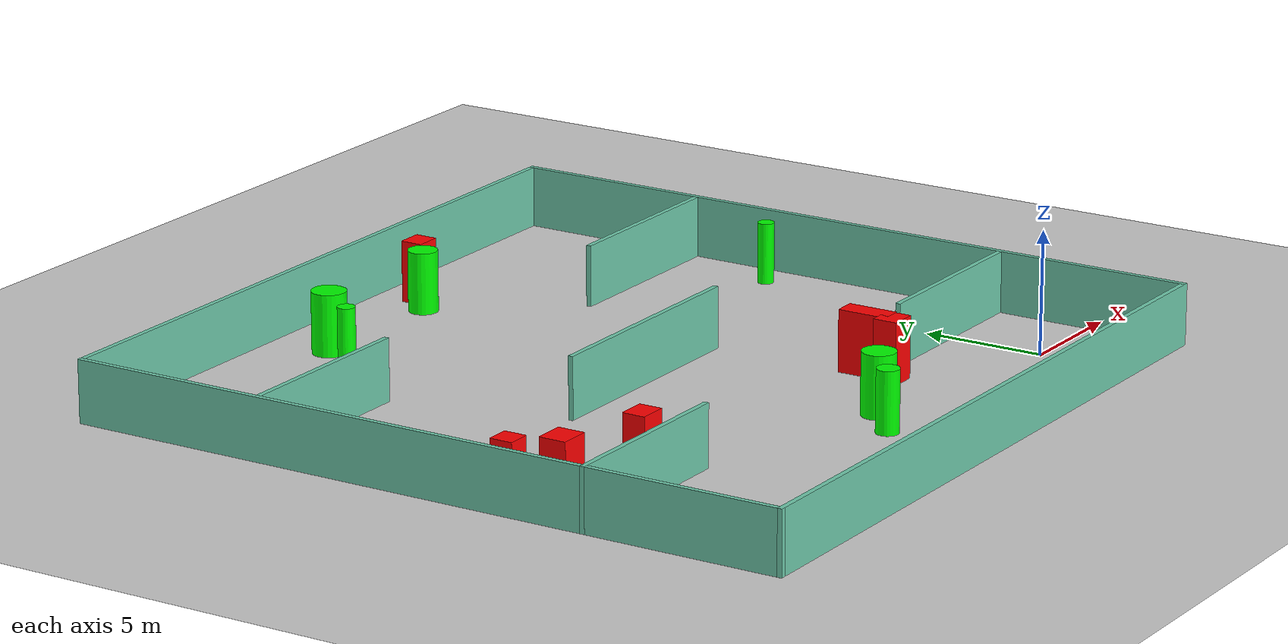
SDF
<sdf version="1.7">
 <world name="default">
  <light name="sun" type="directional">
   <pose>0 0 10 0 -0 0</pose>
   <diffuse>0.8 0.8 0.8 1</diffuse>
   <specular>0.2 0.2 0.2 1</specular>
   <attenuation>
    <range>1000</range>
    <constant>0.9</constant>
    <linear>0.01</linear>
    <quadratic>0.001</quadratic>
   </attenuation>
   <direction>-0.5 0.1 -0.9</direction>
   <spot><inner_angle>0</inner_angle><outer_angle>0</outer_angle><falloff>0</falloff></spot>
  </light>
  <model name="ground_plane">
   <static>1</static>
   <link name="link">
    <collision name="collision">
     <geometry><plane><normal>0 0 1</normal><size>100 100</size></plane></geometry>
     <surface>
      <contact><collide_bitmask>65535</collide_bitmask></contact>
      <friction><ode><mu>100</mu><mu2>50</mu2></ode></friction>
     </surface>
    </collision>
    <visual name="visual">
     <cast_shadows>0</cast_shadows>
     <geometry><plane><normal>0 0 1</normal><size>100 100</size></plane></geometry>
     <material>
      <script><uri>file://media/materials/scripts/gazebo.material</uri><name>Gazebo/Grey</name></script>
     </material>
    </visual>
   </link>
  </model>
  <gravity>0 0 -9.8</gravity>
  <magnetic_field>6e-06 2.3e-05 -4.2e-05</magnetic_field>
  <atmosphere type="adiabatic"/>
  <physics type="ode">
   <max_step_size>0.001</max_step_size>
   <real_time_factor>1</real_time_factor>
   <real_time_update_rate>1000</real_time_update_rate>
  </physics>
  <scene><ambient>0.4 0.4 0.4 1</ambient><background>0.7 0.7 0.7 1</background><shadows>1</shadows></scene>
  <spherical_coordinates>
   <surface_model>EARTH_WGS84</surface_model>
   <latitude_deg>0</latitude_deg>
   <longitude_deg>0</longitude_deg>
   <elevation>0</elevation>
   <heading_deg>0</heading_deg>
  </spherical_coordinates>
  <model name="my_base_walls">
   <link name="Wall_10">
    <collision name="Wall_10_Collision">
     <geometry><box><size>8.2 0.2 2.5</size></box></geometry>
     <pose>0 0 1.25 0 -0 0</pose>
    </collision>
    <visual name="Wall_10_Visual">
     <pose>0 0 1.25 0 -0 0</pose>
     <geometry><box><size>8.2 0.2 2.5</size></box></geometry>
     <material>
      <script><uri>file://media/materials/scripts/gazebo.material</uri><name>Gazebo/Grey</name></script>
      <ambient>0.435294 0.796078 0.67451 1</ambient>
     </material>
     <meta><layer>0</layer></meta>
    </visual>
    <pose>-11 -7 0 0 -0 0</pose>
   </link>
   <link name="Wall_12">
    <collision name="Wall_12_Collision">
     <geometry><box><size>8.2 0.2 2.5</size></box></geometry>
     <pose>0 0 1.25 0 -0 0</pose>
    </collision>
    <visual name="Wall_12_Visual">
     <pose>0 0 1.25 0 -0 0</pose>
     <geometry><box><size>8.2 0.2 2.5</size></box></geometry>
     <material>
      <script><uri>file://media/materials/scripts/gazebo.material</uri><name>Gazebo/Grey</name></script>
      <ambient>0.435294 0.796078 0.67451 1</ambient>
     </material>
     <meta><layer>0</layer></meta>
    </visual>
    <pose>-11 7 0 0 -0 0</pose>
   </link>
   <link name="Wall_14">
    <collision name="Wall_14_Collision">
     <geometry><box><size>8.2 0.2 2.5</size></box></geometry>
     <pose>0 0 1.25 0 -0 0</pose>
    </collision>
    <visual name="Wall_14_Visual">
     <pose>0 0 1.25 0 -0 0</pose>
     <geometry><box><size>8.2 0.2 2.5</size></box></geometry>
     <material>
      <script><uri>file://media/materials/scripts/gazebo.material</uri><name>Gazebo/Grey</name></script>
      <ambient>0.435294 0.796078 0.67451 1</ambient>
     </material>
     <meta><layer>0</layer></meta>
    </visual>
    <pose>11 7 0 0 -0 3.14159</pose>
   </link>
   <link name="Wall_16">
    <collision name="Wall_16_Collision">
     <geometry><box><size>10.2 0.2 2.5</size></box></geometry>
     <pose>0 0 1.25 0 -0 0</pose>
    </collision>
    <visual name="Wall_16_Visual">
     <pose>0 0 1.25 0 -0 0</pose>
     <geometry><box><size>10.2 0.2 2.5</size></box></geometry>
     <material>
      <script><uri>file://media/materials/scripts/gazebo.material</uri><name>Gazebo/Grey</name></script>
      <ambient>0.435294 0.796078 0.67451 1</ambient>
     </material>
     <meta><layer>0</layer></meta>
    </visual>
    <pose>0 0 0 0 -0 3.14159</pose>
   </link>
   <link name="Wall_2">
    <collision name="Wall_2_Collision">
     <geometry><box><size>30.2 0.2 2.5</size></box></geometry>
     <pose>0 0 1.25 0 -0 0</pose>
    </collision>
    <visual name="Wall_2_Visual">
     <pose>0 0 1.25 0 -0 0</pose>
     <geometry><box><size>30.2 0.2 2.5</size></box></geometry>
     <material>
      <script><uri>file://media/materials/scripts/gazebo.material</uri><name>Gazebo/Grey</name></script>
      <ambient>0.435294 0.796078 0.67451 1</ambient>
     </material>
     <meta><layer>0</layer></meta>
    </visual>
    <pose>0 -15 0 0 -0 3.14159</pose>
   </link>
   <link name="Wall_3">
    <collision name="Wall_3_Collision">
     <geometry><box><size>30.2 0.2 2.5</size></box></geometry>
     <pose>0 0 1.25 0 -0 0</pose>
    </collision>
    <visual name="Wall_3_Visual">
     <pose>0 0 1.25 0 -0 0</pose>
     <geometry><box><size>30.2 0.2 2.5</size></box></geometry>
     <material>
      <script><uri>file://media/materials/scripts/gazebo.material</uri><name>Gazebo/Grey</name></script>
      <ambient>0.435294 0.796078 0.67451 1</ambient>
     </material>
     <meta><layer>0</layer></meta>
    </visual>
    <pose>-15 0 0 0 -0 1.5708</pose>
   </link>
   <link name="Wall_4">
    <collision name="Wall_4_Collision">
     <geometry><box><size>30.2 0.2 2.5</size></box></geometry>
     <pose>0 0 1.25 0 -0 0</pose>
    </collision>
    <visual name="Wall_4_Visual">
     <pose>0 0 1.25 0 -0 0</pose>
     <geometry><box><size>30.2 0.2 2.5</size></box></geometry>
     <material>
      <script><uri>file://media/materials/scripts/gazebo.material</uri><name>Gazebo/Grey</name></script>
      <ambient>0.435294 0.796078 0.67451 1</ambient>
     </material>
     <meta><layer>0</layer></meta>
    </visual>
    <pose>0 15 0 0 -0 0</pose>
   </link>
   <link name="Wall_6">
    <collision name="Wall_6_Collision">
     <geometry><box><size>30.2 0.2 2.5</size></box></geometry>
     <pose>0 0 1.25 0 -0 0</pose>
    </collision>
    <visual name="Wall_6_Visual">
     <pose>0 0 1.25 0 -0 0</pose>
     <geometry><box><size>30.2 0.2 2.5</size></box></geometry>
     <material>
      <script><uri>file://media/materials/scripts/gazebo.material</uri><name>Gazebo/Grey</name></script>
      <ambient>0.435294 0.796078 0.67451 1</ambient>
     </material>
     <meta><layer>0</layer></meta>
    </visual>
    <pose>15 0 0 0 -0 1.5708</pose>
   </link>
   <link name="Wall_8">
    <collision name="Wall_8_Collision">
     <geometry><box><size>8.2 0.2 2.5</size></box></geometry>
     <pose>0 0 1.25 0 -0 0</pose>
    </collision>
    <visual name="Wall_8_Visual">
     <pose>0 0 1.25 0 -0 0</pose>
     <geometry><box><size>8.2 0.2 2.5</size></box></geometry>
     <material>
      <script><uri>file://media/materials/scripts/gazebo.material</uri><name>Gazebo/Grey</name></script>
      <ambient>0.435294 0.796078 0.67451 1</ambient>
     </material>
     <meta><layer>0</layer></meta>
    </visual>
    <pose>11 -7 0 0 -0 3.14159</pose>
   </link>
   <static>1</static>
   <pose>-11 11 0 0 -0 0</pose>
  </model>
  <model name="cylinder1">
   <static>1</static>
   <link name="link">
    <inertial>
     <mass>1</mass>
     <inertia><ixx>0.5</ixx><ixy>0</ixy><ixz>0</ixz><iyy>0.5</iyy><iyz>0</iyz><izz>1</izz></inertia>
    </inertial>
    <collision name="collision">
     <geometry><cylinder><radius>0.697649013579494</radius><length>2.5</length></cylinder></geometry>
    </collision>
    <visual name="visual">
     <geometry><cylinder><radius>0.697649013579494</radius><length>2.5</length></cylinder></geometry>
     <material>
      <ambient>0 1 0 1</ambient>
      <diffuse>0 1 0 1</diffuse>
      <specular>0.1 0.1 0.1 1</specular>
      <emissive>0 0 0 0</emissive>
     </material>
    </visual>
   </link>
   <pose>-14.318531755567395 23.215057406172658 1.25 0 0 0</pose>
  </model>
  <model name="cylinder2">
   <static>1</static>
   <link name="link">
    <inertial>
     <mass>1</mass>
     <inertia><ixx>0.5</ixx><ixy>0</ixy><ixz>0</ixz><iyy>0.5</iyy><iyz>0</iyz><izz>1</izz></inertia>
    </inertial>
    <collision name="collision">
     <geometry><cylinder><radius>0.4516936263255905</radius><length>2.5</length></cylinder></geometry>
    </collision>
    <visual name="visual">
     <geometry><cylinder><radius>0.4516936263255905</radius><length>2.5</length></cylinder></geometry>
     <material>
      <ambient>0 1 0 1</ambient>
      <diffuse>0 1 0 1</diffuse>
      <specular>0.1 0.1 0.1 1</specular>
      <emissive>0 0 0 0</emissive>
     </material>
    </visual>
   </link>
   <pose>-11.022851662561974 0.4414011063961869 1.25 0 0 0</pose>
  </model>
  <model name="cylinder3">
   <static>1</static>
   <link name="link">
    <inertial>
     <mass>1</mass>
     <inertia><ixx>0.5</ixx><ixy>0</ixy><ixz>0</ixz><iyy>0.5</iyy><iyz>0</iyz><izz>1</izz></inertia>
    </inertial>
    <collision name="collision">
     <geometry><cylinder><radius>0.599617423498104</radius><length>2.5</length></cylinder></geometry>
    </collision>
    <visual name="visual">
     <geometry><cylinder><radius>0.599617423498104</radius><length>2.5</length></cylinder></geometry>
     <material>
      <ambient>0 1 0 1</ambient>
      <diffuse>0 1 0 1</diffuse>
      <specular>0.1 0.1 0.1 1</specular>
      <emissive>0 0 0 0</emissive>
     </material>
    </visual>
   </link>
   <pose>-8.048463164131078 23.187652452520577 1.25 0 0 0</pose>
  </model>
  <model name="cylinder4">
   <static>1</static>
   <link name="link">
    <inertial>
     <mass>1</mass>
     <inertia><ixx>0.5</ixx><ixy>0</ixy><ixz>0</ixz><iyy>0.5</iyy><iyz>0</iyz><izz>1</izz></inertia>
    </inertial>
    <collision name="collision">
     <geometry><cylinder><radius>0.6760205045199748</radius><length>2.5</length></cylinder></geometry>
    </collision>
    <visual name="visual">
     <geometry><cylinder><radius>0.6760205045199748</radius><length>2.5</length></cylinder></geometry>
     <material>
      <ambient>0 1 0 1</ambient>
      <diffuse>0 1 0 1</diffuse>
      <specular>0.1 0.1 0.1 1</specular>
      <emissive>0 0 0 0</emissive>
     </material>
    </visual>
   </link>
   <pose>-9.454940566014757 1.7256388196496317 1.25 0 0 0</pose>
  </model>
  <model name="cylinder5">
   <static>1</static>
   <link name="link">
    <inertial>
     <mass>1</mass>
     <inertia><ixx>0.5</ixx><ixy>0</ixy><ixz>0</ixz><iyy>0.5</iyy><iyz>0</iyz><izz>1</izz></inertia>
    </inertial>
    <collision name="collision">
     <geometry><cylinder><radius>0.331594841044183</radius><length>2.5</length></cylinder></geometry>
    </collision>
    <visual name="visual">
     <geometry><cylinder><radius>0.331594841044183</radius><length>2.5</length></cylinder></geometry>
     <material>
      <ambient>0 1 0 1</ambient>
      <diffuse>0 1 0 1</diffuse>
      <specular>0.1 0.1 0.1 1</specular>
      <emissive>0 0 0 0</emissive>
     </material>
    </visual>
   </link>
   <pose>2.3826830423427126 13.762965897292545 1.25 0 0 0</pose>
  </model>
  <model name="cylinder6">
   <static>1</static>
   <link name="link">
    <inertial>
     <mass>1</mass>
     <inertia><ixx>0.5</ixx><ixy>0</ixy><ixz>0</ixz><iyy>0.5</iyy><iyz>0</iyz><izz>1</izz></inertia>
    </inertial>
    <collision name="collision">
     <geometry><cylinder><radius>0.35520674273650577</radius><length>2.5</length></cylinder></geometry>
    </collision>
    <visual name="visual">
     <geometry><cylinder><radius>0.35520674273650577</radius><length>2.5</length></cylinder></geometry>
     <material>
      <ambient>0 1 0 1</ambient>
      <diffuse>0 1 0 1</diffuse>
      <specular>0.1 0.1 0.1 1</specular>
      <emissive>0 0 0 0</emissive>
     </material>
    </visual>
   </link>
   <pose>-15.61644011740659 21.472519489627764 1.25 0 0 0</pose>
  </model>
  <model name="box1">
   <static>1</static>
   <link name="link">
    <inertial>
     <mass>1</mass>
     <inertia><ixx>0.083</ixx><ixy>0</ixy><ixz>0</ixz><iyy>0.083</iyy><iyz>0</iyz><izz>0.083</izz></inertia>
    </inertial>
    <collision name="collision">
     <geometry><box><size>0.9435546439490923 0.922576051625216 2.5</size></box></geometry>
    </collision>
    <visual name="visual">
     <geometry><box><size>0.9435546439490923 0.922576051625216 2.5</size></box></geometry>
     <material>
      <ambient>1 0 0 1</ambient>
      <diffuse>1 0 0 1</diffuse>
      <specular>0.1 0.1 0.1 1</specular>
      <emissive>0 0 0 0</emissive>
     </material>
    </visual>
    <sensor name="my_contact" type="contact">
     <contact><collision>box_collision</collision><topic>__default_topic__</topic></contact>
    </sensor>
   </link>
   <pose>-24.85001797084144 7.905026533038374 1.25 0 0 0</pose>
  </model>
  <model name="box2">
   <static>1</static>
   <link name="link">
    <inertial>
     <mass>1</mass>
     <inertia><ixx>0.083</ixx><ixy>0</ixy><ixz>0</ixz><iyy>0.083</iyy><iyz>0</iyz><izz>0.083</izz></inertia>
    </inertial>
    <collision name="collision">
     <geometry><box><size>0.8786774225116776 2.028606705769828 2.5</size></box></geometry>
    </collision>
    <visual name="visual">
     <geometry><box><size>0.8786774225116776 2.028606705769828 2.5</size></box></geometry>
     <material>
      <ambient>1 0 0 1</ambient>
      <diffuse>1 0 0 1</diffuse>
      <specular>0.1 0.1 0.1 1</specular>
      <emissive>0 0 0 0</emissive>
     </material>
    </visual>
    <sensor name="my_contact" type="contact">
     <contact><collision>box_collision</collision><topic>__default_topic__</topic></contact>
    </sensor>
   </link>
   <pose>-5.48223777350163 4.5203900641413615 1.25 0 0 0</pose>
  </model>
  <model name="box3">
   <static>1</static>
   <link name="link">
    <inertial>
     <mass>1</mass>
     <inertia><ixx>0.083</ixx><ixy>0</ixy><ixz>0</ixz><iyy>0.083</iyy><iyz>0</iyz><izz>0.083</izz></inertia>
    </inertial>
    <collision name="collision">
     <geometry><box><size>1.1649783395330133 0.9361548684359192 2.5</size></box></geometry>
    </collision>
    <visual name="visual">
     <geometry><box><size>1.1649783395330133 0.9361548684359192 2.5</size></box></geometry>
     <material>
      <ambient>1 0 0 1</ambient>
      <diffuse>1 0 0 1</diffuse>
      <specular>0.1 0.1 0.1 1</specular>
      <emissive>0 0 0 0</emissive>
     </material>
    </visual>
    <sensor name="my_contact" type="contact">
     <contact><collision>box_collision</collision><topic>__default_topic__</topic></contact>
    </sensor>
   </link>
   <pose>-19.901101042609646 5.460278313834131 1.25 0 0 0</pose>
  </model>
  <model name="box4">
   <static>1</static>
   <link name="link">
    <inertial>
     <mass>1</mass>
     <inertia><ixx>0.083</ixx><ixy>0</ixy><ixz>0</ixz><iyy>0.083</iyy><iyz>0</iyz><izz>0.083</izz></inertia>
    </inertial>
    <collision name="collision">
     <geometry><box><size>1.107104517978319 0.9957382488864411 2.5</size></box></geometry>
    </collision>
    <visual name="visual">
     <geometry><box><size>1.107104517978319 0.9957382488864411 2.5</size></box></geometry>
     <material>
      <ambient>1 0 0 1</ambient>
      <diffuse>1 0 0 1</diffuse>
      <specular>0.1 0.1 0.1 1</specular>
      <emissive>0 0 0 0</emissive>
     </material>
    </visual>
    <sensor name="my_contact" type="contact">
     <contact><collision>box_collision</collision><topic>__default_topic__</topic></contact>
    </sensor>
   </link>
   <pose>-5.667876280578865 3.353642516734525 1.25 0 0 0</pose>
  </model>
  <model name="box5">
   <static>1</static>
   <link name="link">
    <inertial>
     <mass>1</mass>
     <inertia><ixx>0.083</ixx><ixy>0</ixy><ixz>0</ixz><iyy>0.083</iyy><iyz>0</iyz><izz>0.083</izz></inertia>
    </inertial>
    <collision name="collision">
     <geometry><box><size>1.0536822288256842 0.9120567297691483 2.5</size></box></geometry>
    </collision>
    <visual name="visual">
     <geometry><box><size>1.0536822288256842 0.9120567297691483 2.5</size></box></geometry>
     <material>
      <ambient>1 0 0 1</ambient>
      <diffuse>1 0 0 1</diffuse>
      <specular>0.1 0.1 0.1 1</specular>
      <emissive>0 0 0 0</emissive>
     </material>
    </visual>
    <sensor name="my_contact" type="contact">
     <contact><collision>box_collision</collision><topic>__default_topic__</topic></contact>
    </sensor>
   </link>
   <pose>-6.9988697611218385 24.104016134608088 1.25 0 0 0</pose>
  </model>
  <model name="box6">
   <static>1</static>
   <link name="link">
    <inertial>
     <mass>1</mass>
     <inertia><ixx>0.083</ixx><ixy>0</ixy><ixz>0</ixz><iyy>0.083</iyy><iyz>0</iyz><izz>0.083</izz></inertia>
    </inertial>
    <collision name="collision">
     <geometry><box><size>1.2495429207083375 1.0998680075563678 2.5</size></box></geometry>
    </collision>
    <visual name="visual">
     <geometry><box><size>1.2495429207083375 1.0998680075563678 2.5</size></box></geometry>
     <material>
      <ambient>1 0 0 1</ambient>
      <diffuse>1 0 0 1</diffuse>
      <specular>0.1 0.1 0.1 1</specular>
      <emissive>0 0 0 0</emissive>
     </material>
    </visual>
    <sensor name="my_contact" type="contact">
     <contact><collision>box_collision</collision><topic>__default_topic__</topic></contact>
    </sensor>
   </link>
   <pose>-23.647898106619945 6.423938278200062 1.25 0 0 0</pose>
  </model>
 </world>
</sdf>
